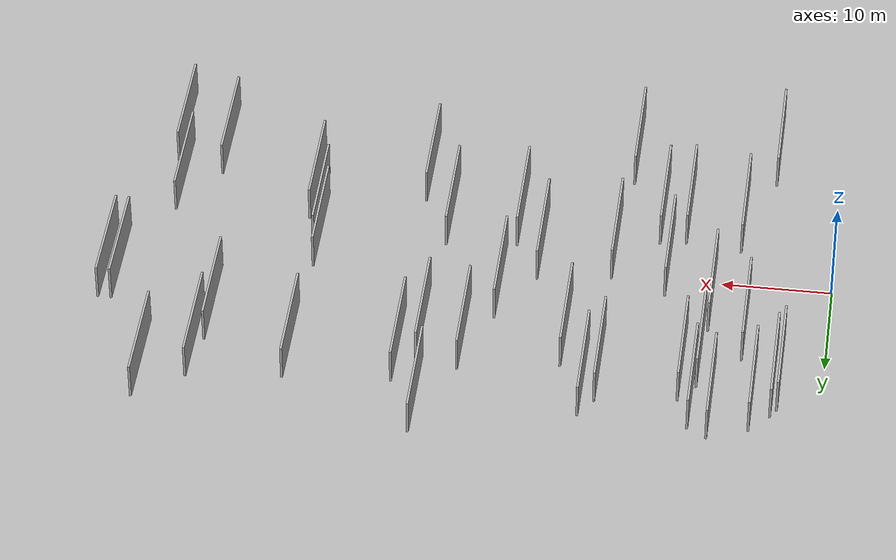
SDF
<?xml version="1.0" encoding="utf-8"?>

<sdf version="1.6">

   <world name="default">

      <gui fullscreen="0">

         <camera name="user_camera">

            <pose>-15 0 4.57585 0 0 0</pose>

            <view_controller>orbit</view_controller>

         </camera>

      </gui>

      <scene>

         <sky>

           <clouds>

             <speed>12</speed>

           </clouds>

         </sky>

         <ambient>0.4 0.4 0.4 1</ambient>

         <background>0.7 0.7 0.7 1</background>

         <shadows>1</shadows>

      </scene>

      <gravity>0 0 -9.8066</gravity>

      <magnetic_field>6e-06 2.3e-05 -4.2e-05</magnetic_field>

      <physics default="0" name="default_physics" type="ode">

         <ode>

            <solver>

               <type>quick</type>

               <iters>10</iters>

               <sor>1.0</sor>

               <use_dynamic_moi_rescaling>0</use_dynamic_moi_rescaling>

            </solver>

            <constraints>

               <cfm>0</cfm>

               <erp>0.2</erp>

               <contact_max_correcting_vel>100</contact_max_correcting_vel>

               <contact_surface_layer>0.001</contact_surface_layer>

            </constraints>

         </ode>

         <max_step_size>0.004</max_step_size>

         <real_time_factor>1</real_time_factor>

         <real_time_update_rate>250</real_time_update_rate>

      </physics>

      <light name="sun" type="directional">

         <cast_shadows>1</cast_shadows>

         <pose>0 0 10 0 0 0</pose>

         <diffuse>0.8 0.8 0.8 1</diffuse>

         <specular>0.2 0.2 0.2 1</specular>

         <attenuation>

            <range>1000</range>

            <constant>0.9</constant>

            <linear>0.01</linear>

            <quadratic>0.001</quadratic>

         </attenuation>

         <direction>-0.5 0.1 -0.9</direction>

      </light>

      <include>

         <name>ground_plane_1</name>

         <uri>model://HANNAS_ground_plane</uri>

         <pose>0 0 0  0 0 0</pose>

      </include>

      <include>

         <name>ground_plane_2</name>

         <uri>model://HANNAS_ground_plane</uri>

         <pose>100 0 0  0 0 0</pose>

      </include>

      <model name="HANNAS_wall_1">

         <static>1</static>

         <pose frame="">12.6579 11.2083 0.0 0.000000 0.000000 1.570796</pose>

         <link name="link">

            <pose frame="">0 0 2.00 0 0 0</pose>

            <collision name="collision">

               <geometry>

                  <box>

                     <size>10.00 0.2 4.00</size>

                  </box>

               </geometry>

               <max_contacts>10</max_contacts>

               <surface>

                  <contact>

                     <ode/>

                  </contact>

                  <bounce/>

                  <friction>

                     <torsional>

                        <ode/>

                     </torsional>

                     <ode/>

                  </friction>

               </surface>

            </collision>

            <visual name="visual">

               <cast_shadows>0</cast_shadows>

               <geometry>

                  <box>

                     <size>10.00 0.2 4.00</size>

                  </box>

               </geometry>

               <material>

                  <script>

                     <uri>model://HANNAS_wall/materials/scripts</uri>

                     <uri>model://HANNAS_wall/materials/textures</uri>

                     <name>vrc/HANNAS_wall</name>

                  </script>

               </material>

            </visual>

            <self_collide>0</self_collide>

            <enable_wind>0</enable_wind>

            <kinematic>0</kinematic>

         </link>

      </model>

      <model name="HANNAS_wall_2">

         <static>1</static>

         <pose frame="">29.0719 -7.4037 0.0 0.000000 0.000000 1.570796</pose>

         <link name="link">

            <pose frame="">0 0 2.00 0 0 0</pose>

            <collision name="collision">

               <geometry>

                  <box>

                     <size>10.00 0.2 4.00</size>

                  </box>

               </geometry>

               <max_contacts>10</max_contacts>

               <surface>

                  <contact>

                     <ode/>

                  </contact>

                  <bounce/>

                  <friction>

                     <torsional>

                        <ode/>

                     </torsional>

                     <ode/>

                  </friction>

               </surface>

            </collision>

            <visual name="visual">

               <cast_shadows>0</cast_shadows>

               <geometry>

                  <box>

                     <size>10.00 0.2 4.00</size>

                  </box>

               </geometry>

               <material>

                  <script>

                     <uri>model://HANNAS_wall/materials/scripts</uri>

                     <uri>model://HANNAS_wall/materials/textures</uri>

                     <name>vrc/HANNAS_wall</name>

                  </script>

               </material>

            </visual>

            <self_collide>0</self_collide>

            <enable_wind>0</enable_wind>

            <kinematic>0</kinematic>

         </link>

      </model>

      <model name="HANNAS_wall_3">

         <static>1</static>

         <pose frame="">60.6945 16.6076 0.0 0.000000 0.000000 1.570796</pose>

         <link name="link">

            <pose frame="">0 0 2.00 0 0 0</pose>

            <collision name="collision">

               <geometry>

                  <box>

                     <size>10.00 0.2 4.00</size>

                  </box>

               </geometry>

               <max_contacts>10</max_contacts>

               <surface>

                  <contact>

                     <ode/>

                  </contact>

                  <bounce/>

                  <friction>

                     <torsional>

                        <ode/>

                     </torsional>

                     <ode/>

                  </friction>

               </surface>

            </collision>

            <visual name="visual">

               <cast_shadows>0</cast_shadows>

               <geometry>

                  <box>

                     <size>10.00 0.2 4.00</size>

                  </box>

               </geometry>

               <material>

                  <script>

                     <uri>model://HANNAS_wall/materials/scripts</uri>

                     <uri>model://HANNAS_wall/materials/textures</uri>

                     <name>vrc/HANNAS_wall</name>

                  </script>

               </material>

            </visual>

            <self_collide>0</self_collide>

            <enable_wind>0</enable_wind>

            <kinematic>0</kinematic>

         </link>

      </model>

      <model name="HANNAS_wall_4">

         <static>1</static>

         <pose frame="">21.2465 14.1780 0.0 0.000000 0.000000 1.570796</pose>

         <link name="link">

            <pose frame="">0 0 2.00 0 0 0</pose>

            <collision name="collision">

               <geometry>

                  <box>

                     <size>10.00 0.2 4.00</size>

                  </box>

               </geometry>

               <max_contacts>10</max_contacts>

               <surface>

                  <contact>

                     <ode/>

                  </contact>

                  <bounce/>

                  <friction>

                     <torsional>

                        <ode/>

                     </torsional>

                     <ode/>

                  </friction>

               </surface>

            </collision>

            <visual name="visual">

               <cast_shadows>0</cast_shadows>

               <geometry>

                  <box>

                     <size>10.00 0.2 4.00</size>

                  </box>

               </geometry>

               <material>

                  <script>

                     <uri>model://HANNAS_wall/materials/scripts</uri>

                     <uri>model://HANNAS_wall/materials/textures</uri>

                     <name>vrc/HANNAS_wall</name>

                  </script>

               </material>

            </visual>

            <self_collide>0</self_collide>

            <enable_wind>0</enable_wind>

            <kinematic>0</kinematic>

         </link>

      </model>

      <model name="HANNAS_wall_5">

         <static>1</static>

         <pose frame="">7.4385 5.3698 0.0 0.000000 0.000000 1.570796</pose>

         <link name="link">

            <pose frame="">0 0 2.00 0 0 0</pose>

            <collision name="collision">

               <geometry>

                  <box>

                     <size>10.00 0.2 4.00</size>

                  </box>

               </geometry>

               <max_contacts>10</max_contacts>

               <surface>

                  <contact>

                     <ode/>

                  </contact>

                  <bounce/>

                  <friction>

                     <torsional>

                        <ode/>

                     </torsional>

                     <ode/>

                  </friction>

               </surface>

            </collision>

            <visual name="visual">

               <cast_shadows>0</cast_shadows>

               <geometry>

                  <box>

                     <size>10.00 0.2 4.00</size>

                  </box>

               </geometry>

               <material>

                  <script>

                     <uri>model://HANNAS_wall/materials/scripts</uri>

                     <uri>model://HANNAS_wall/materials/textures</uri>

                     <name>vrc/HANNAS_wall</name>

                  </script>

               </material>

            </visual>

            <self_collide>0</self_collide>

            <enable_wind>0</enable_wind>

            <kinematic>0</kinematic>

         </link>

      </model>

      <model name="HANNAS_wall_6">

         <static>1</static>

         <pose frame="">61.8766 -15.3295 0.0 0.000000 0.000000 1.570796</pose>

         <link name="link">

            <pose frame="">0 0 2.00 0 0 0</pose>

            <collision name="collision">

               <geometry>

                  <box>

                     <size>10.00 0.2 4.00</size>

                  </box>

               </geometry>

               <max_contacts>10</max_contacts>

               <surface>

                  <contact>

                     <ode/>

                  </contact>

                  <bounce/>

                  <friction>

                     <torsional>

                        <ode/>

                     </torsional>

                     <ode/>

                  </friction>

               </surface>

            </collision>

            <visual name="visual">

               <cast_shadows>0</cast_shadows>

               <geometry>

                  <box>

                     <size>10.00 0.2 4.00</size>

                  </box>

               </geometry>

               <material>

                  <script>

                     <uri>model://HANNAS_wall/materials/scripts</uri>

                     <uri>model://HANNAS_wall/materials/textures</uri>

                     <name>vrc/HANNAS_wall</name>

                  </script>

               </material>

            </visual>

            <self_collide>0</self_collide>

            <enable_wind>0</enable_wind>

            <kinematic>0</kinematic>

         </link>

      </model>

      <model name="HANNAS_wall_7">

         <static>1</static>

         <pose frame="">64.7455 4.1946 0.0 0.000000 0.000000 1.570796</pose>

         <link name="link">

            <pose frame="">0 0 2.00 0 0 0</pose>

            <collision name="collision">

               <geometry>

                  <box>

                     <size>10.00 0.2 4.00</size>

                  </box>

               </geometry>

               <max_contacts>10</max_contacts>

               <surface>

                  <contact>

                     <ode/>

                  </contact>

                  <bounce/>

                  <friction>

                     <torsional>

                        <ode/>

                     </torsional>

                     <ode/>

                  </friction>

               </surface>

            </collision>

            <visual name="visual">

               <cast_shadows>0</cast_shadows>

               <geometry>

                  <box>

                     <size>10.00 0.2 4.00</size>

                  </box>

               </geometry>

               <material>

                  <script>

                     <uri>model://HANNAS_wall/materials/scripts</uri>

                     <uri>model://HANNAS_wall/materials/textures</uri>

                     <name>vrc/HANNAS_wall</name>

                  </script>

               </material>

            </visual>

            <self_collide>0</self_collide>

            <enable_wind>0</enable_wind>

            <kinematic>0</kinematic>

         </link>

      </model>

      <model name="HANNAS_wall_8">

         <static>1</static>

         <pose frame="">6.0194 -18.6114 0.0 0.000000 0.000000 1.570796</pose>

         <link name="link">

            <pose frame="">0 0 2.00 0 0 0</pose>

            <collision name="collision">

               <geometry>

                  <box>

                     <size>10.00 0.2 4.00</size>

                  </box>

               </geometry>

               <max_contacts>10</max_contacts>

               <surface>

                  <contact>

                     <ode/>

                  </contact>

                  <bounce/>

                  <friction>

                     <torsional>

                        <ode/>

                     </torsional>

                     <ode/>

                  </friction>

               </surface>

            </collision>

            <visual name="visual">

               <cast_shadows>0</cast_shadows>

               <geometry>

                  <box>

                     <size>10.00 0.2 4.00</size>

                  </box>

               </geometry>

               <material>

                  <script>

                     <uri>model://HANNAS_wall/materials/scripts</uri>

                     <uri>model://HANNAS_wall/materials/textures</uri>

                     <name>vrc/HANNAS_wall</name>

                  </script>

               </material>

            </visual>

            <self_collide>0</self_collide>

            <enable_wind>0</enable_wind>

            <kinematic>0</kinematic>

         </link>

      </model>

      <model name="HANNAS_wall_9">

         <static>1</static>

         <pose frame="">11.5013 14.6143 0.0 0.000000 0.000000 1.570796</pose>

         <link name="link">

            <pose frame="">0 0 2.00 0 0 0</pose>

            <collision name="collision">

               <geometry>

                  <box>

                     <size>10.00 0.2 4.00</size>

                  </box>

               </geometry>

               <max_contacts>10</max_contacts>

               <surface>

                  <contact>

                     <ode/>

                  </contact>

                  <bounce/>

                  <friction>

                     <torsional>

                        <ode/>

                     </torsional>

                     <ode/>

                  </friction>

               </surface>

            </collision>

            <visual name="visual">

               <cast_shadows>0</cast_shadows>

               <geometry>

                  <box>

                     <size>10.00 0.2 4.00</size>

                  </box>

               </geometry>

               <material>

                  <script>

                     <uri>model://HANNAS_wall/materials/scripts</uri>

                     <uri>model://HANNAS_wall/materials/textures</uri>

                     <name>vrc/HANNAS_wall</name>

                  </script>

               </material>

            </visual>

            <self_collide>0</self_collide>

            <enable_wind>0</enable_wind>

            <kinematic>0</kinematic>

         </link>

      </model>

      <model name="HANNAS_wall_10">

         <static>1</static>

         <pose frame="">38.1137 -12.4736 0.0 0.000000 0.000000 1.570796</pose>

         <link name="link">

            <pose frame="">0 0 2.00 0 0 0</pose>

            <collision name="collision">

               <geometry>

                  <box>

                     <size>10.00 0.2 4.00</size>

                  </box>

               </geometry>

               <max_contacts>10</max_contacts>

               <surface>

                  <contact>

                     <ode/>

                  </contact>

                  <bounce/>

                  <friction>

                     <torsional>

                        <ode/>

                     </torsional>

                     <ode/>

                  </friction>

               </surface>

            </collision>

            <visual name="visual">

               <cast_shadows>0</cast_shadows>

               <geometry>

                  <box>

                     <size>10.00 0.2 4.00</size>

                  </box>

               </geometry>

               <material>

                  <script>

                     <uri>model://HANNAS_wall/materials/scripts</uri>

                     <uri>model://HANNAS_wall/materials/textures</uri>

                     <name>vrc/HANNAS_wall</name>

                  </script>

               </material>

            </visual>

            <self_collide>0</self_collide>

            <enable_wind>0</enable_wind>

            <kinematic>0</kinematic>

         </link>

      </model>

      <model name="HANNAS_wall_11">

         <static>1</static>

         <pose frame="">8.5839 -8.9344 0.0 0.000000 0.000000 1.570796</pose>

         <link name="link">

            <pose frame="">0 0 2.00 0 0 0</pose>

            <collision name="collision">

               <geometry>

                  <box>

                     <size>10.00 0.2 4.00</size>

                  </box>

               </geometry>

               <max_contacts>10</max_contacts>

               <surface>

                  <contact>

                     <ode/>

                  </contact>

                  <bounce/>

                  <friction>

                     <torsional>

                        <ode/>

                     </torsional>

                     <ode/>

                  </friction>

               </surface>

            </collision>

            <visual name="visual">

               <cast_shadows>0</cast_shadows>

               <geometry>

                  <box>

                     <size>10.00 0.2 4.00</size>

                  </box>

               </geometry>

               <material>

                  <script>

                     <uri>model://HANNAS_wall/materials/scripts</uri>

                     <uri>model://HANNAS_wall/materials/textures</uri>

                     <name>vrc/HANNAS_wall</name>

                  </script>

               </material>

            </visual>

            <self_collide>0</self_collide>

            <enable_wind>0</enable_wind>

            <kinematic>0</kinematic>

         </link>

      </model>

      <model name="HANNAS_wall_12">

         <static>1</static>

         <pose frame="">9.7428 15.6504 0.0 0.000000 0.000000 1.570796</pose>

         <link name="link">

            <pose frame="">0 0 2.00 0 0 0</pose>

            <collision name="collision">

               <geometry>

                  <box>

                     <size>10.00 0.2 4.00</size>

                  </box>

               </geometry>

               <max_contacts>10</max_contacts>

               <surface>

                  <contact>

                     <ode/>

                  </contact>

                  <bounce/>

                  <friction>

                     <torsional>

                        <ode/>

                     </torsional>

                     <ode/>

                  </friction>

               </surface>

            </collision>

            <visual name="visual">

               <cast_shadows>0</cast_shadows>

               <geometry>

                  <box>

                     <size>10.00 0.2 4.00</size>

                  </box>

               </geometry>

               <material>

                  <script>

                     <uri>model://HANNAS_wall/materials/scripts</uri>

                     <uri>model://HANNAS_wall/materials/textures</uri>

                     <name>vrc/HANNAS_wall</name>

                  </script>

               </material>

            </visual>

            <self_collide>0</self_collide>

            <enable_wind>0</enable_wind>

            <kinematic>0</kinematic>

         </link>

      </model>

      <model name="HANNAS_wall_13">

         <static>1</static>

         <pose frame="">60.9667 -8.4664 0.0 0.000000 0.000000 1.570796</pose>

         <link name="link">

            <pose frame="">0 0 2.00 0 0 0</pose>

            <collision name="collision">

               <geometry>

                  <box>

                     <size>10.00 0.2 4.00</size>

                  </box>

               </geometry>

               <max_contacts>10</max_contacts>

               <surface>

                  <contact>

                     <ode/>

                  </contact>

                  <bounce/>

                  <friction>

                     <torsional>

                        <ode/>

                     </torsional>

                     <ode/>

                  </friction>

               </surface>

            </collision>

            <visual name="visual">

               <cast_shadows>0</cast_shadows>

               <geometry>

                  <box>

                     <size>10.00 0.2 4.00</size>

                  </box>

               </geometry>

               <material>

                  <script>

                     <uri>model://HANNAS_wall/materials/scripts</uri>

                     <uri>model://HANNAS_wall/materials/textures</uri>

                     <name>vrc/HANNAS_wall</name>

                  </script>

               </material>

            </visual>

            <self_collide>0</self_collide>

            <enable_wind>0</enable_wind>

            <kinematic>0</kinematic>

         </link>

      </model>

      <model name="HANNAS_wall_14">

         <static>1</static>

         <pose frame="">11.1623 9.2940 0.0 0.000000 0.000000 1.570796</pose>

         <link name="link">

            <pose frame="">0 0 2.00 0 0 0</pose>

            <collision name="collision">

               <geometry>

                  <box>

                     <size>10.00 0.2 4.00</size>

                  </box>

               </geometry>

               <max_contacts>10</max_contacts>

               <surface>

                  <contact>

                     <ode/>

                  </contact>

                  <bounce/>

                  <friction>

                     <torsional>

                        <ode/>

                     </torsional>

                     <ode/>

                  </friction>

               </surface>

            </collision>

            <visual name="visual">

               <cast_shadows>0</cast_shadows>

               <geometry>

                  <box>

                     <size>10.00 0.2 4.00</size>

                  </box>

               </geometry>

               <material>

                  <script>

                     <uri>model://HANNAS_wall/materials/scripts</uri>

                     <uri>model://HANNAS_wall/materials/textures</uri>

                     <name>vrc/HANNAS_wall</name>

                  </script>

               </material>

            </visual>

            <self_collide>0</self_collide>

            <enable_wind>0</enable_wind>

            <kinematic>0</kinematic>

         </link>

      </model>

      <model name="HANNAS_wall_15">

         <static>1</static>

         <pose frame="">19.1810 -17.2312 0.0 0.000000 0.000000 1.570796</pose>

         <link name="link">

            <pose frame="">0 0 2.00 0 0 0</pose>

            <collision name="collision">

               <geometry>

                  <box>

                     <size>10.00 0.2 4.00</size>

                  </box>

               </geometry>

               <max_contacts>10</max_contacts>

               <surface>

                  <contact>

                     <ode/>

                  </contact>

                  <bounce/>

                  <friction>

                     <torsional>

                        <ode/>

                     </torsional>

                     <ode/>

                  </friction>

               </surface>

            </collision>

            <visual name="visual">

               <cast_shadows>0</cast_shadows>

               <geometry>

                  <box>

                     <size>10.00 0.2 4.00</size>

                  </box>

               </geometry>

               <material>

                  <script>

                     <uri>model://HANNAS_wall/materials/scripts</uri>

                     <uri>model://HANNAS_wall/materials/textures</uri>

                     <name>vrc/HANNAS_wall</name>

                  </script>

               </material>

            </visual>

            <self_collide>0</self_collide>

            <enable_wind>0</enable_wind>

            <kinematic>0</kinematic>

         </link>

      </model>

      <model name="HANNAS_wall_16">

         <static>1</static>

         <pose frame="">26.7497 -3.0774 0.0 0.000000 0.000000 1.570796</pose>

         <link name="link">

            <pose frame="">0 0 2.00 0 0 0</pose>

            <collision name="collision">

               <geometry>

                  <box>

                     <size>10.00 0.2 4.00</size>

                  </box>

               </geometry>

               <max_contacts>10</max_contacts>

               <surface>

                  <contact>

                     <ode/>

                  </contact>

                  <bounce/>

                  <friction>

                     <torsional>

                        <ode/>

                     </torsional>

                     <ode/>

                  </friction>

               </surface>

            </collision>

            <visual name="visual">

               <cast_shadows>0</cast_shadows>

               <geometry>

                  <box>

                     <size>10.00 0.2 4.00</size>

                  </box>

               </geometry>

               <material>

                  <script>

                     <uri>model://HANNAS_wall/materials/scripts</uri>

                     <uri>model://HANNAS_wall/materials/textures</uri>

                     <name>vrc/HANNAS_wall</name>

                  </script>

               </material>

            </visual>

            <self_collide>0</self_collide>

            <enable_wind>0</enable_wind>

            <kinematic>0</kinematic>

         </link>

      </model>

      <model name="HANNAS_wall_17">

         <static>1</static>

         <pose frame="">36.2596 8.9802 0.0 0.000000 0.000000 1.570796</pose>

         <link name="link">

            <pose frame="">0 0 2.00 0 0 0</pose>

            <collision name="collision">

               <geometry>

                  <box>

                     <size>10.00 0.2 4.00</size>

                  </box>

               </geometry>

               <max_contacts>10</max_contacts>

               <surface>

                  <contact>

                     <ode/>

                  </contact>

                  <bounce/>

                  <friction>

                     <torsional>

                        <ode/>

                     </torsional>

                     <ode/>

                  </friction>

               </surface>

            </collision>

            <visual name="visual">

               <cast_shadows>0</cast_shadows>

               <geometry>

                  <box>

                     <size>10.00 0.2 4.00</size>

                  </box>

               </geometry>

               <material>

                  <script>

                     <uri>model://HANNAS_wall/materials/scripts</uri>

                     <uri>model://HANNAS_wall/materials/textures</uri>

                     <name>vrc/HANNAS_wall</name>

                  </script>

               </material>

            </visual>

            <self_collide>0</self_collide>

            <enable_wind>0</enable_wind>

            <kinematic>0</kinematic>

         </link>

      </model>

      <model name="HANNAS_wall_18">

         <static>1</static>

         <pose frame="">56.3521 13.4899 0.0 0.000000 0.000000 1.570796</pose>

         <link name="link">

            <pose frame="">0 0 2.00 0 0 0</pose>

            <collision name="collision">

               <geometry>

                  <box>

                     <size>10.00 0.2 4.00</size>

                  </box>

               </geometry>

               <max_contacts>10</max_contacts>

               <surface>

                  <contact>

                     <ode/>

                  </contact>

                  <bounce/>

                  <friction>

                     <torsional>

                        <ode/>

                     </torsional>

                     <ode/>

                  </friction>

               </surface>

            </collision>

            <visual name="visual">

               <cast_shadows>0</cast_shadows>

               <geometry>

                  <box>

                     <size>10.00 0.2 4.00</size>

                  </box>

               </geometry>

               <material>

                  <script>

                     <uri>model://HANNAS_wall/materials/scripts</uri>

                     <uri>model://HANNAS_wall/materials/textures</uri>

                     <name>vrc/HANNAS_wall</name>

                  </script>

               </material>

            </visual>

            <self_collide>0</self_collide>

            <enable_wind>0</enable_wind>

            <kinematic>0</kinematic>

         </link>

      </model>

      <model name="HANNAS_wall_19">

         <static>1</static>

         <pose frame="">6.1523 14.2588 0.0 0.000000 0.000000 1.570796</pose>

         <link name="link">

            <pose frame="">0 0 2.00 0 0 0</pose>

            <collision name="collision">

               <geometry>

                  <box>

                     <size>10.00 0.2 4.00</size>

                  </box>

               </geometry>

               <max_contacts>10</max_contacts>

               <surface>

                  <contact>

                     <ode/>

                  </contact>

                  <bounce/>

                  <friction>

                     <torsional>

                        <ode/>

                     </torsional>

                     <ode/>

                  </friction>

               </surface>

            </collision>

            <visual name="visual">

               <cast_shadows>0</cast_shadows>

               <geometry>

                  <box>

                     <size>10.00 0.2 4.00</size>

                  </box>

               </geometry>

               <material>

                  <script>

                     <uri>model://HANNAS_wall/materials/scripts</uri>

                     <uri>model://HANNAS_wall/materials/textures</uri>

                     <name>vrc/HANNAS_wall</name>

                  </script>

               </material>

            </visual>

            <self_collide>0</self_collide>

            <enable_wind>0</enable_wind>

            <kinematic>0</kinematic>

         </link>

      </model>

      <model name="HANNAS_wall_20">

         <static>1</static>

         <pose frame="">30.0039 2.5264 0.0 0.000000 0.000000 1.570796</pose>

         <link name="link">

            <pose frame="">0 0 2.00 0 0 0</pose>

            <collision name="collision">

               <geometry>

                  <box>

                     <size>10.00 0.2 4.00</size>

                  </box>

               </geometry>

               <max_contacts>10</max_contacts>

               <surface>

                  <contact>

                     <ode/>

                  </contact>

                  <bounce/>

                  <friction>

                     <torsional>

                        <ode/>

                     </torsional>

                     <ode/>

                  </friction>

               </surface>

            </collision>

            <visual name="visual">

               <cast_shadows>0</cast_shadows>

               <geometry>

                  <box>

                     <size>10.00 0.2 4.00</size>

                  </box>

               </geometry>

               <material>

                  <script>

                     <uri>model://HANNAS_wall/materials/scripts</uri>

                     <uri>model://HANNAS_wall/materials/textures</uri>

                     <name>vrc/HANNAS_wall</name>

                  </script>

               </material>

            </visual>

            <self_collide>0</self_collide>

            <enable_wind>0</enable_wind>

            <kinematic>0</kinematic>

         </link>

      </model>

      <model name="HANNAS_wall_21">

         <static>1</static>

         <pose frame="">3.8511 11.4149 0.0 0.000000 0.000000 1.570796</pose>

         <link name="link">

            <pose frame="">0 0 2.00 0 0 0</pose>

            <collision name="collision">

               <geometry>

                  <box>

                     <size>10.00 0.2 4.00</size>

                  </box>

               </geometry>

               <max_contacts>10</max_contacts>

               <surface>

                  <contact>

                     <ode/>

                  </contact>

                  <bounce/>

                  <friction>

                     <torsional>

                        <ode/>

                     </torsional>

                     <ode/>

                  </friction>

               </surface>

            </collision>

            <visual name="visual">

               <cast_shadows>0</cast_shadows>

               <geometry>

                  <box>

                     <size>10.00 0.2 4.00</size>

                  </box>

               </geometry>

               <material>

                  <script>

                     <uri>model://HANNAS_wall/materials/scripts</uri>

                     <uri>model://HANNAS_wall/materials/textures</uri>

                     <name>vrc/HANNAS_wall</name>

                  </script>

               </material>

            </visual>

            <self_collide>0</self_collide>

            <enable_wind>0</enable_wind>

            <kinematic>0</kinematic>

         </link>

      </model>

      <model name="HANNAS_wall_22">

         <static>1</static>

         <pose frame="">35.5313 -6.7264 0.0 0.000000 0.000000 1.570796</pose>

         <link name="link">

            <pose frame="">0 0 2.00 0 0 0</pose>

            <collision name="collision">

               <geometry>

                  <box>

                     <size>10.00 0.2 4.00</size>

                  </box>

               </geometry>

               <max_contacts>10</max_contacts>

               <surface>

                  <contact>

                     <ode/>

                  </contact>

                  <bounce/>

                  <friction>

                     <torsional>

                        <ode/>

                     </torsional>

                     <ode/>

                  </friction>

               </surface>

            </collision>

            <visual name="visual">

               <cast_shadows>0</cast_shadows>

               <geometry>

                  <box>

                     <size>10.00 0.2 4.00</size>

                  </box>

               </geometry>

               <material>

                  <script>

                     <uri>model://HANNAS_wall/materials/scripts</uri>

                     <uri>model://HANNAS_wall/materials/textures</uri>

                     <name>vrc/HANNAS_wall</name>

                  </script>

               </material>

            </visual>

            <self_collide>0</self_collide>

            <enable_wind>0</enable_wind>

            <kinematic>0</kinematic>

         </link>

      </model>

      <model name="HANNAS_wall_23">

         <static>1</static>

         <pose frame="">38.1249 11.8530 0.0 0.000000 0.000000 1.570796</pose>

         <link name="link">

            <pose frame="">0 0 2.00 0 0 0</pose>

            <collision name="collision">

               <geometry>

                  <box>

                     <size>10.00 0.2 4.00</size>

                  </box>

               </geometry>

               <max_contacts>10</max_contacts>

               <surface>

                  <contact>

                     <ode/>

                  </contact>

                  <bounce/>

                  <friction>

                     <torsional>

                        <ode/>

                     </torsional>

                     <ode/>

                  </friction>

               </surface>

            </collision>

            <visual name="visual">

               <cast_shadows>0</cast_shadows>

               <geometry>

                  <box>

                     <size>10.00 0.2 4.00</size>

                  </box>

               </geometry>

               <material>

                  <script>

                     <uri>model://HANNAS_wall/materials/scripts</uri>

                     <uri>model://HANNAS_wall/materials/textures</uri>

                     <name>vrc/HANNAS_wall</name>

                  </script>

               </material>

            </visual>

            <self_collide>0</self_collide>

            <enable_wind>0</enable_wind>

            <kinematic>0</kinematic>

         </link>

      </model>

      <model name="HANNAS_wall_24">

         <static>1</static>

         <pose frame="">47.7930 12.5827 0.0 0.000000 0.000000 1.570796</pose>

         <link name="link">

            <pose frame="">0 0 2.00 0 0 0</pose>

            <collision name="collision">

               <geometry>

                  <box>

                     <size>10.00 0.2 4.00</size>

                  </box>

               </geometry>

               <max_contacts>10</max_contacts>

               <surface>

                  <contact>

                     <ode/>

                  </contact>

                  <bounce/>

                  <friction>

                     <torsional>

                        <ode/>

                     </torsional>

                     <ode/>

                  </friction>

               </surface>

            </collision>

            <visual name="visual">

               <cast_shadows>0</cast_shadows>

               <geometry>

                  <box>

                     <size>10.00 0.2 4.00</size>

                  </box>

               </geometry>

               <material>

                  <script>

                     <uri>model://HANNAS_wall/materials/scripts</uri>

                     <uri>model://HANNAS_wall/materials/textures</uri>

                     <name>vrc/HANNAS_wall</name>

                  </script>

               </material>

            </visual>

            <self_collide>0</self_collide>

            <enable_wind>0</enable_wind>

            <kinematic>0</kinematic>

         </link>

      </model>

      <model name="HANNAS_wall_25">

         <static>1</static>

         <pose frame="">65.9557 4.1701 0.0 0.000000 0.000000 1.570796</pose>

         <link name="link">

            <pose frame="">0 0 2.00 0 0 0</pose>

            <collision name="collision">

               <geometry>

                  <box>

                     <size>10.00 0.2 4.00</size>

                  </box>

               </geometry>

               <max_contacts>10</max_contacts>

               <surface>

                  <contact>

                     <ode/>

                  </contact>

                  <bounce/>

                  <friction>

                     <torsional>

                        <ode/>

                     </torsional>

                     <ode/>

                  </friction>

               </surface>

            </collision>

            <visual name="visual">

               <cast_shadows>0</cast_shadows>

               <geometry>

                  <box>

                     <size>10.00 0.2 4.00</size>

                  </box>

               </geometry>

               <material>

                  <script>

                     <uri>model://HANNAS_wall/materials/scripts</uri>

                     <uri>model://HANNAS_wall/materials/textures</uri>

                     <name>vrc/HANNAS_wall</name>

                  </script>

               </material>

            </visual>

            <self_collide>0</self_collide>

            <enable_wind>0</enable_wind>

            <kinematic>0</kinematic>

         </link>

      </model>

      <model name="HANNAS_wall_26">

         <static>1</static>

         <pose frame="">32.5019 9.5955 0.0 0.000000 0.000000 1.570796</pose>

         <link name="link">

            <pose frame="">0 0 2.00 0 0 0</pose>

            <collision name="collision">

               <geometry>

                  <box>

                     <size>10.00 0.2 4.00</size>

                  </box>

               </geometry>

               <max_contacts>10</max_contacts>

               <surface>

                  <contact>

                     <ode/>

                  </contact>

                  <bounce/>

                  <friction>

                     <torsional>

                        <ode/>

                     </torsional>

                     <ode/>

                  </friction>

               </surface>

            </collision>

            <visual name="visual">

               <cast_shadows>0</cast_shadows>

               <geometry>

                  <box>

                     <size>10.00 0.2 4.00</size>

                  </box>

               </geometry>

               <material>

                  <script>

                     <uri>model://HANNAS_wall/materials/scripts</uri>

                     <uri>model://HANNAS_wall/materials/textures</uri>

                     <name>vrc/HANNAS_wall</name>

                  </script>

               </material>

            </visual>

            <self_collide>0</self_collide>

            <enable_wind>0</enable_wind>

            <kinematic>0</kinematic>

         </link>

      </model>

      <model name="HANNAS_wall_27">

         <static>1</static>

         <pose frame="">20.0350 -3.9924 0.0 0.000000 0.000000 1.570796</pose>

         <link name="link">

            <pose frame="">0 0 2.00 0 0 0</pose>

            <collision name="collision">

               <geometry>

                  <box>

                     <size>10.00 0.2 4.00</size>

                  </box>

               </geometry>

               <max_contacts>10</max_contacts>

               <surface>

                  <contact>

                     <ode/>

                  </contact>

                  <bounce/>

                  <friction>

                     <torsional>

                        <ode/>

                     </torsional>

                     <ode/>

                  </friction>

               </surface>

            </collision>

            <visual name="visual">

               <cast_shadows>0</cast_shadows>

               <geometry>

                  <box>

                     <size>10.00 0.2 4.00</size>

                  </box>

               </geometry>

               <material>

                  <script>

                     <uri>model://HANNAS_wall/materials/scripts</uri>

                     <uri>model://HANNAS_wall/materials/textures</uri>

                     <name>vrc/HANNAS_wall</name>

                  </script>

               </material>

            </visual>

            <self_collide>0</self_collide>

            <enable_wind>0</enable_wind>

            <kinematic>0</kinematic>

         </link>

      </model>

      <model name="HANNAS_wall_28">

         <static>1</static>

         <pose frame="">55.4763 8.5840 0.0 0.000000 0.000000 1.570796</pose>

         <link name="link">

            <pose frame="">0 0 2.00 0 0 0</pose>

            <collision name="collision">

               <geometry>

                  <box>

                     <size>10.00 0.2 4.00</size>

                  </box>

               </geometry>

               <max_contacts>10</max_contacts>

               <surface>

                  <contact>

                     <ode/>

                  </contact>

                  <bounce/>

                  <friction>

                     <torsional>

                        <ode/>

                     </torsional>

                     <ode/>

                  </friction>

               </surface>

            </collision>

            <visual name="visual">

               <cast_shadows>0</cast_shadows>

               <geometry>

                  <box>

                     <size>10.00 0.2 4.00</size>

                  </box>

               </geometry>

               <material>

                  <script>

                     <uri>model://HANNAS_wall/materials/scripts</uri>

                     <uri>model://HANNAS_wall/materials/textures</uri>

                     <name>vrc/HANNAS_wall</name>

                  </script>

               </material>

            </visual>

            <self_collide>0</self_collide>

            <enable_wind>0</enable_wind>

            <kinematic>0</kinematic>

         </link>

      </model>

      <model name="HANNAS_wall_29">

         <static>1</static>

         <pose frame="">47.6599 -5.3140 0.0 0.000000 0.000000 1.570796</pose>

         <link name="link">

            <pose frame="">0 0 2.00 0 0 0</pose>

            <collision name="collision">

               <geometry>

                  <box>

                     <size>10.00 0.2 4.00</size>

                  </box>

               </geometry>

               <max_contacts>10</max_contacts>

               <surface>

                  <contact>

                     <ode/>

                  </contact>

                  <bounce/>

                  <friction>

                     <torsional>

                        <ode/>

                     </torsional>

                     <ode/>

                  </friction>

               </surface>

            </collision>

            <visual name="visual">

               <cast_shadows>0</cast_shadows>

               <geometry>

                  <box>

                     <size>10.00 0.2 4.00</size>

                  </box>

               </geometry>

               <material>

                  <script>

                     <uri>model://HANNAS_wall/materials/scripts</uri>

                     <uri>model://HANNAS_wall/materials/textures</uri>

                     <name>vrc/HANNAS_wall</name>

                  </script>

               </material>

            </visual>

            <self_collide>0</self_collide>

            <enable_wind>0</enable_wind>

            <kinematic>0</kinematic>

         </link>

      </model>

      <model name="HANNAS_wall_30">

         <static>1</static>

         <pose frame="">15.0125 -2.2922 0.0 0.000000 0.000000 1.570796</pose>

         <link name="link">

            <pose frame="">0 0 2.00 0 0 0</pose>

            <collision name="collision">

               <geometry>

                  <box>

                     <size>10.00 0.2 4.00</size>

                  </box>

               </geometry>

               <max_contacts>10</max_contacts>

               <surface>

                  <contact>

                     <ode/>

                  </contact>

                  <bounce/>

                  <friction>

                     <torsional>

                        <ode/>

                     </torsional>

                     <ode/>

                  </friction>

               </surface>

            </collision>

            <visual name="visual">

               <cast_shadows>0</cast_shadows>

               <geometry>

                  <box>

                     <size>10.00 0.2 4.00</size>

                  </box>

               </geometry>

               <material>

                  <script>

                     <uri>model://HANNAS_wall/materials/scripts</uri>

                     <uri>model://HANNAS_wall/materials/textures</uri>

                     <name>vrc/HANNAS_wall</name>

                  </script>

               </material>

            </visual>

            <self_collide>0</self_collide>

            <enable_wind>0</enable_wind>

            <kinematic>0</kinematic>

         </link>

      </model>

      <model name="HANNAS_wall_31">

         <static>1</static>

         <pose frame="">57.5111 -13.9699 0.0 0.000000 0.000000 1.570796</pose>

         <link name="link">

            <pose frame="">0 0 2.00 0 0 0</pose>

            <collision name="collision">

               <geometry>

                  <box>

                     <size>10.00 0.2 4.00</size>

                  </box>

               </geometry>

               <max_contacts>10</max_contacts>

               <surface>

                  <contact>

                     <ode/>

                  </contact>

                  <bounce/>

                  <friction>

                     <torsional>

                        <ode/>

                     </torsional>

                     <ode/>

                  </friction>

               </surface>

            </collision>

            <visual name="visual">

               <cast_shadows>0</cast_shadows>

               <geometry>

                  <box>

                     <size>10.00 0.2 4.00</size>

                  </box>

               </geometry>

               <material>

                  <script>

                     <uri>model://HANNAS_wall/materials/scripts</uri>

                     <uri>model://HANNAS_wall/materials/textures</uri>

                     <name>vrc/HANNAS_wall</name>

                  </script>

               </material>

            </visual>

            <self_collide>0</self_collide>

            <enable_wind>0</enable_wind>

            <kinematic>0</kinematic>

         </link>

      </model>

      <model name="HANNAS_wall_32">

         <static>1</static>

         <pose frame="">4.3864 12.3454 0.0 0.000000 0.000000 1.570796</pose>

         <link name="link">

            <pose frame="">0 0 2.00 0 0 0</pose>

            <collision name="collision">

               <geometry>

                  <box>

                     <size>10.00 0.2 4.00</size>

                  </box>

               </geometry>

               <max_contacts>10</max_contacts>

               <surface>

                  <contact>

                     <ode/>

                  </contact>

                  <bounce/>

                  <friction>

                     <torsional>

                        <ode/>

                     </torsional>

                     <ode/>

                  </friction>

               </surface>

            </collision>

            <visual name="visual">

               <cast_shadows>0</cast_shadows>

               <geometry>

                  <box>

                     <size>10.00 0.2 4.00</size>

                  </box>

               </geometry>

               <material>

                  <script>

                     <uri>model://HANNAS_wall/materials/scripts</uri>

                     <uri>model://HANNAS_wall/materials/textures</uri>

                     <name>vrc/HANNAS_wall</name>

                  </script>

               </material>

            </visual>

            <self_collide>0</self_collide>

            <enable_wind>0</enable_wind>

            <kinematic>0</kinematic>

         </link>

      </model>

      <model name="HANNAS_wall_33">

         <static>1</static>

         <pose frame="">19.9664 12.2101 0.0 0.000000 0.000000 1.570796</pose>

         <link name="link">

            <pose frame="">0 0 2.00 0 0 0</pose>

            <collision name="collision">

               <geometry>

                  <box>

                     <size>10.00 0.2 4.00</size>

                  </box>

               </geometry>

               <max_contacts>10</max_contacts>

               <surface>

                  <contact>

                     <ode/>

                  </contact>

                  <bounce/>

                  <friction>

                     <torsional>

                        <ode/>

                     </torsional>

                     <ode/>

                  </friction>

               </surface>

            </collision>

            <visual name="visual">

               <cast_shadows>0</cast_shadows>

               <geometry>

                  <box>

                     <size>10.00 0.2 4.00</size>

                  </box>

               </geometry>

               <material>

                  <script>

                     <uri>model://HANNAS_wall/materials/scripts</uri>

                     <uri>model://HANNAS_wall/materials/textures</uri>

                     <name>vrc/HANNAS_wall</name>

                  </script>

               </material>

            </visual>

            <self_collide>0</self_collide>

            <enable_wind>0</enable_wind>

            <kinematic>0</kinematic>

         </link>

      </model>

      <model name="HANNAS_wall_34">

         <static>1</static>

         <pose frame="">23.4179 8.0821 0.0 0.000000 0.000000 1.570796</pose>

         <link name="link">

            <pose frame="">0 0 2.00 0 0 0</pose>

            <collision name="collision">

               <geometry>

                  <box>

                     <size>10.00 0.2 4.00</size>

                  </box>

               </geometry>

               <max_contacts>10</max_contacts>

               <surface>

                  <contact>

                     <ode/>

                  </contact>

                  <bounce/>

                  <friction>

                     <torsional>

                        <ode/>

                     </torsional>

                     <ode/>

                  </friction>

               </surface>

            </collision>

            <visual name="visual">

               <cast_shadows>0</cast_shadows>

               <geometry>

                  <box>

                     <size>10.00 0.2 4.00</size>

                  </box>

               </geometry>

               <material>

                  <script>

                     <uri>model://HANNAS_wall/materials/scripts</uri>

                     <uri>model://HANNAS_wall/materials/textures</uri>

                     <name>vrc/HANNAS_wall</name>

                  </script>

               </material>

            </visual>

            <self_collide>0</self_collide>

            <enable_wind>0</enable_wind>

            <kinematic>0</kinematic>

         </link>

      </model>

      <model name="HANNAS_wall_35">

         <static>1</static>

         <pose frame="">48.4897 -8.7461 0.0 0.000000 0.000000 1.570796</pose>

         <link name="link">

            <pose frame="">0 0 2.00 0 0 0</pose>

            <collision name="collision">

               <geometry>

                  <box>

                     <size>10.00 0.2 4.00</size>

                  </box>

               </geometry>

               <max_contacts>10</max_contacts>

               <surface>

                  <contact>

                     <ode/>

                  </contact>

                  <bounce/>

                  <friction>

                     <torsional>

                        <ode/>

                     </torsional>

                     <ode/>

                  </friction>

               </surface>

            </collision>

            <visual name="visual">

               <cast_shadows>0</cast_shadows>

               <geometry>

                  <box>

                     <size>10.00 0.2 4.00</size>

                  </box>

               </geometry>

               <material>

                  <script>

                     <uri>model://HANNAS_wall/materials/scripts</uri>

                     <uri>model://HANNAS_wall/materials/textures</uri>

                     <name>vrc/HANNAS_wall</name>

                  </script>

               </material>

            </visual>

            <self_collide>0</self_collide>

            <enable_wind>0</enable_wind>

            <kinematic>0</kinematic>

         </link>

      </model>

      <model name="HANNAS_wall_36">

         <static>1</static>

         <pose frame="">16.0602 -9.2191 0.0 0.000000 0.000000 1.570796</pose>

         <link name="link">

            <pose frame="">0 0 2.00 0 0 0</pose>

            <collision name="collision">

               <geometry>

                  <box>

                     <size>10.00 0.2 4.00</size>

                  </box>

               </geometry>

               <max_contacts>10</max_contacts>

               <surface>

                  <contact>

                     <ode/>

                  </contact>

                  <bounce/>

                  <friction>

                     <torsional>

                        <ode/>

                     </torsional>

                     <ode/>

                  </friction>

               </surface>

            </collision>

            <visual name="visual">

               <cast_shadows>0</cast_shadows>

               <geometry>

                  <box>

                     <size>10.00 0.2 4.00</size>

                  </box>

               </geometry>

               <material>

                  <script>

                     <uri>model://HANNAS_wall/materials/scripts</uri>

                     <uri>model://HANNAS_wall/materials/textures</uri>

                     <name>vrc/HANNAS_wall</name>

                  </script>

               </material>

            </visual>

            <self_collide>0</self_collide>

            <enable_wind>0</enable_wind>

            <kinematic>0</kinematic>

         </link>

      </model>

      <model name="HANNAS_wall_37">

         <static>1</static>

         <pose frame="">13.6767 -9.5695 0.0 0.000000 0.000000 1.570796</pose>

         <link name="link">

            <pose frame="">0 0 2.00 0 0 0</pose>

            <collision name="collision">

               <geometry>

                  <box>

                     <size>10.00 0.2 4.00</size>

                  </box>

               </geometry>

               <max_contacts>10</max_contacts>

               <surface>

                  <contact>

                     <ode/>

                  </contact>

                  <bounce/>

                  <friction>

                     <torsional>

                        <ode/>

                     </torsional>

                     <ode/>

                  </friction>

               </surface>

            </collision>

            <visual name="visual">

               <cast_shadows>0</cast_shadows>

               <geometry>

                  <box>

                     <size>10.00 0.2 4.00</size>

                  </box>

               </geometry>

               <material>

                  <script>

                     <uri>model://HANNAS_wall/materials/scripts</uri>

                     <uri>model://HANNAS_wall/materials/textures</uri>

                     <name>vrc/HANNAS_wall</name>

                  </script>

               </material>

            </visual>

            <self_collide>0</self_collide>

            <enable_wind>0</enable_wind>

            <kinematic>0</kinematic>

         </link>

      </model>

      <model name="HANNAS_wall_38">

         <static>1</static>

         <pose frame="">10.7418 1.9167 0.0 0.000000 0.000000 1.570796</pose>

         <link name="link">

            <pose frame="">0 0 2.00 0 0 0</pose>

            <collision name="collision">

               <geometry>

                  <box>

                     <size>10.00 0.2 4.00</size>

                  </box>

               </geometry>

               <max_contacts>10</max_contacts>

               <surface>

                  <contact>

                     <ode/>

                  </contact>

                  <bounce/>

                  <friction>

                     <torsional>

                        <ode/>

                     </torsional>

                     <ode/>

                  </friction>

               </surface>

            </collision>

            <visual name="visual">

               <cast_shadows>0</cast_shadows>

               <geometry>

                  <box>

                     <size>10.00 0.2 4.00</size>

                  </box>

               </geometry>

               <material>

                  <script>

                     <uri>model://HANNAS_wall/materials/scripts</uri>

                     <uri>model://HANNAS_wall/materials/textures</uri>

                     <name>vrc/HANNAS_wall</name>

                  </script>

               </material>

            </visual>

            <self_collide>0</self_collide>

            <enable_wind>0</enable_wind>

            <kinematic>0</kinematic>

         </link>

      </model>

      <model name="HANNAS_wall_39">

         <static>1</static>

         <pose frame="">47.2238 -2.3455 0.0 0.000000 0.000000 1.570796</pose>

         <link name="link">

            <pose frame="">0 0 2.00 0 0 0</pose>

            <collision name="collision">

               <geometry>

                  <box>

                     <size>10.00 0.2 4.00</size>

                  </box>

               </geometry>

               <max_contacts>10</max_contacts>

               <surface>

                  <contact>

                     <ode/>

                  </contact>

                  <bounce/>

                  <friction>

                     <torsional>

                        <ode/>

                     </torsional>

                     <ode/>

                  </friction>

               </surface>

            </collision>

            <visual name="visual">

               <cast_shadows>0</cast_shadows>

               <geometry>

                  <box>

                     <size>10.00 0.2 4.00</size>

                  </box>

               </geometry>

               <material>

                  <script>

                     <uri>model://HANNAS_wall/materials/scripts</uri>

                     <uri>model://HANNAS_wall/materials/textures</uri>

                     <name>vrc/HANNAS_wall</name>

                  </script>

               </material>

            </visual>

            <self_collide>0</self_collide>

            <enable_wind>0</enable_wind>

            <kinematic>0</kinematic>

         </link>

      </model>

      <model name="HANNAS_wall_40">

         <static>1</static>

         <pose frame="">35.7731 18.0920 0.0 0.000000 0.000000 1.570796</pose>

         <link name="link">

            <pose frame="">0 0 2.00 0 0 0</pose>

            <collision name="collision">

               <geometry>

                  <box>

                     <size>10.00 0.2 4.00</size>

                  </box>

               </geometry>

               <max_contacts>10</max_contacts>

               <surface>

                  <contact>

                     <ode/>

                  </contact>

                  <bounce/>

                  <friction>

                     <torsional>

                        <ode/>

                     </torsional>

                     <ode/>

                  </friction>

               </surface>

            </collision>

            <visual name="visual">

               <cast_shadows>0</cast_shadows>

               <geometry>

                  <box>

                     <size>10.00 0.2 4.00</size>

                  </box>

               </geometry>

               <material>

                  <script>

                     <uri>model://HANNAS_wall/materials/scripts</uri>

                     <uri>model://HANNAS_wall/materials/textures</uri>

                     <name>vrc/HANNAS_wall</name>

                  </script>

               </material>

            </visual>

            <self_collide>0</self_collide>

            <enable_wind>0</enable_wind>

            <kinematic>0</kinematic>

         </link>

      </model>

   </world>

</sdf>
